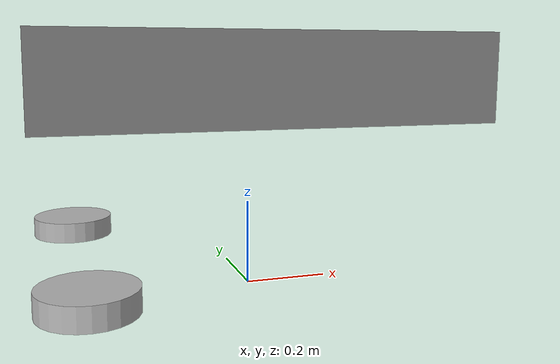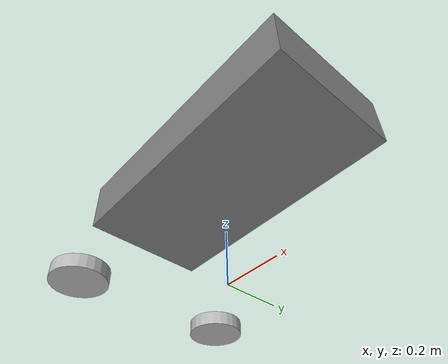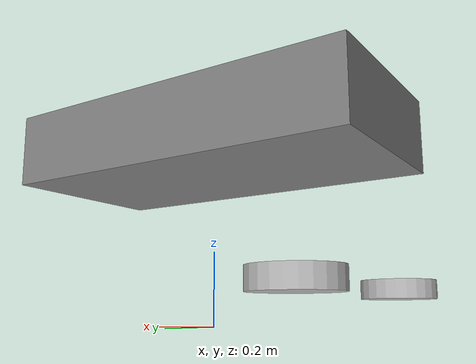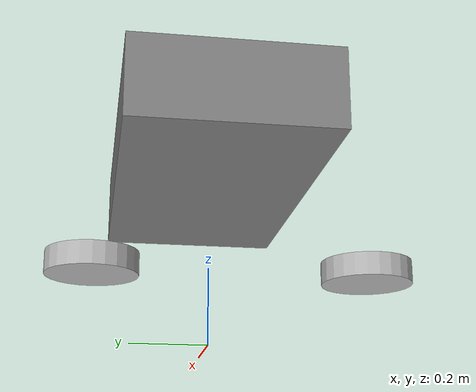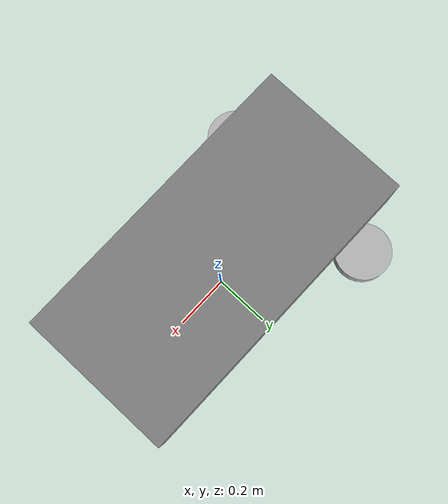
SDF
<?xml version="1.0" ?>
<sdf version="1.6">
  <model name="my_robot">
    <static>false</static>

    <!-- Chassis -->
    <link name="chassis">
      <pose>0 0 0.5 0 0 0</pose> <!-- Position the chassis above the ground -->
      <inertial>
        <mass>10</mass>
        <inertia>
          <ixx>0.5</ixx>
          <iyy>0.5</iyy>
          <izz>0.5</izz>
        </inertia>
      </inertial>
      <collision name="chassis_collision">
        <geometry>
          <box>
            <size>1.0 0.5 0.2</size> <!-- Chassis size: 1m length, 0.5m width, 0.2m height -->
          </box>
        </geometry>
      </collision>
      <visual name="chassis_visual">
        <geometry>
          <box>
            <size>1.0 0.5 0.2</size>
          </box>
        </geometry>
        <material>
          <ambient>0.5 0.5 0.5 1</ambient>
          <diffuse>0.5 0.5 0.5 1</diffuse>
        </material>
      </visual>
    </link>

    <!-- Left Wheel -->
    <link name="left_wheel">
      <pose>-0.4 0.3 0.1 0 0 0</pose> <!-- Adjust position for left wheel -->
      <inertial>
        <mass>1.0</mass>
      </inertial>
      <collision name="left_wheel_collision">
        <geometry>
          <cylinder>
            <radius>0.1</radius>
            <length>0.05</length>
          </cylinder>
        </geometry>
      </collision>
      <visual name="left_wheel_visual">
        <geometry>
          <cylinder>
            <radius>0.1</radius>
            <length>0.05</length>
          </cylinder>
        </geometry>
      </visual>
    </link>

    <!-- Right Wheel -->
    <link name="right_wheel">
      <pose>-0.4 -0.3 0.1 0 0 0</pose> <!-- Adjust position for right wheel -->
      <inertial>
        <mass>1.0</mass>
      </inertial>
      <collision name="right_wheel_collision">
        <geometry>
          <cylinder>
            <radius>0.1</radius>
            <length>0.05</length>
          </cylinder>
        </geometry>
      </collision>
      <visual name="right_wheel_visual">
        <geometry>
          <cylinder>
            <radius>0.1</radius>
            <length>0.05</length>
          </cylinder>
        </geometry>
      </visual>
    </link>

    <!-- Joints for the wheels -->
    <joint name="left_wheel_joint" type="revolute">
      <parent>chassis</parent>
      <child>left_wheel</child>
      <axis>
        <xyz>0 1 0</xyz>
        <limit>
          <lower>-1e16</lower>
          <upper>1e16</upper>
        </limit>
        <dynamics>
          <damping>0.1</damping>
        </dynamics>
      </axis>
    </joint>

    <joint name="right_wheel_joint" type="revolute">
      <parent>chassis</parent>
      <child>right_wheel</child>
      <axis>
        <xyz>0 1 0</xyz>
        <limit>
          <lower>-1e16</lower>
          <upper>1e16</upper>
        </limit>
        <dynamics>
          <damping>0.1</damping>
        </dynamics>
      </axis>
    </joint>

    <!-- Add a camera to the front -->
    <link name="camera_link">
      <pose>0.5 0 0.15 0 0 0</pose> <!-- Position the camera at the front -->
      <sensor name="camera" type="camera">
        <camera>
          <horizontal_fov>1.047</horizontal_fov>
          <image>
            <width>640</width>
            <height>480</height>
          </image>
          <clip>
            <near>0.1</near>
            <far>100</far>
          </clip>
        </camera>
      </sensor>
    </link>
  </model>
</sdf>
